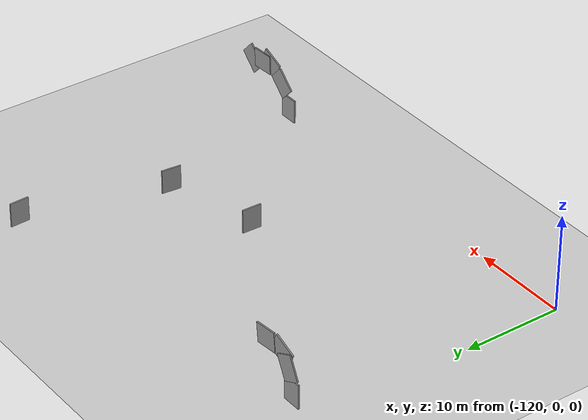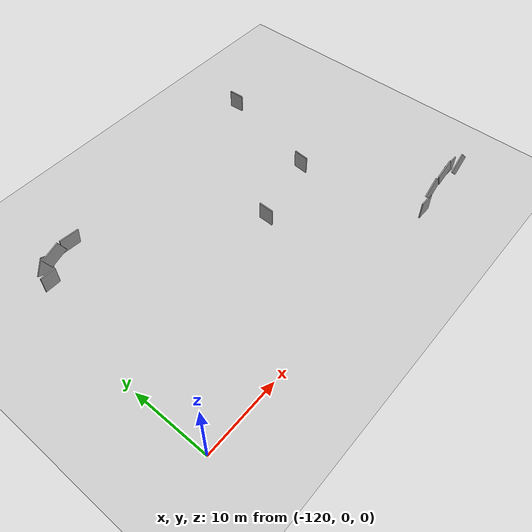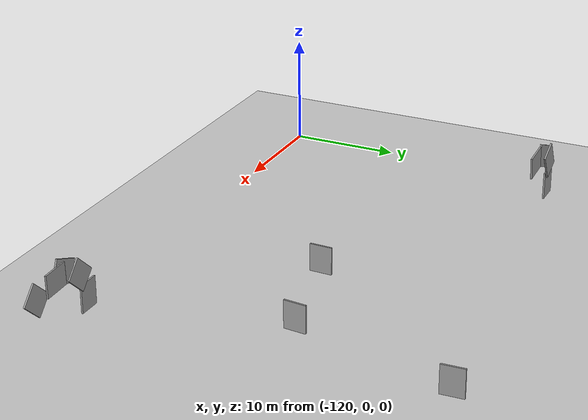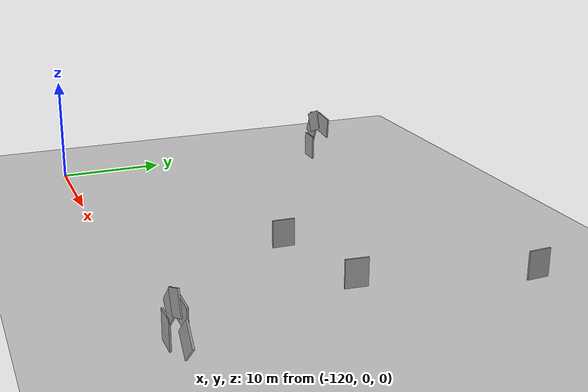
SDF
<sdf version="1.6">
 <world name="default">
  <model name="ground_plane">
   <static>1</static>
   <link name="link">
    <collision name="collision">
     <geometry><plane><normal>0 0 1</normal><size>100 100</size></plane></geometry>
     <surface><friction><ode><mu>100</mu><mu2>50</mu2></ode></friction></surface>
    </collision>
    <visual name="visual">
     <cast_shadows>0</cast_shadows>
     <geometry><plane><normal>0 0 1</normal><size>100 100</size></plane></geometry>
     <material>
      <script><uri>file://media/materials/scripts/gazebo.material</uri><name>Gazebo/Grey</name></script>
     </material>
    </visual>
   </link>
  </model>
  <model name="2mWall_11">
   <pose>-80.5459 0.435841 0 0 -0 0</pose>
   <link name="Wall_0">
    <collision name="Wall_0_Collision">
     <geometry><box><size>2 0.15 2.5</size></box></geometry>
     <pose>0 0 1.25 0 -0 0</pose>
    </collision>
    <visual name="Wall_0_Visual">
     <pose>0 0 1.25 0 -0 0</pose>
     <geometry><box><size>2 0.15 2.5</size></box></geometry>
     <material>
      <script><uri>file://media/materials/scripts/gazebo.material</uri><name>Gazebo/Grey</name></script>
      <ambient>1 1 1 1</ambient>
     </material>
     <meta><layer>0</layer></meta>
    </visual>
   </link>
   <static>1</static>
  </model>
  <model name="2mWall_11_clone_0">
   <pose>-80.3991 0.506506 2.684 0 0.816528 0</pose>
   <link name="Wall_0">
    <collision name="Wall_0_Collision">
     <geometry><box><size>2 0.15 2.5</size></box></geometry>
     <pose>0 0 1.25 0 -0 0</pose>
    </collision>
    <visual name="Wall_0_Visual">
     <pose>0 0 1.25 0 -0 0</pose>
     <geometry><box><size>2 0.15 2.5</size></box></geometry>
     <material>
      <script><uri>file://media/materials/scripts/gazebo.material</uri><name>Gazebo/Grey</name></script>
      <ambient>1 1 1 1</ambient>
     </material>
     <meta><layer>0</layer></meta>
    </visual>
   </link>
   <static>1</static>
  </model>
  <model name="2mWall_11_clone_0_clone">
   <pose>-75.059 0.119832 2.90318 0 0.816528 0</pose>
   <link name="Wall_0">
    <collision name="Wall_0_Collision">
     <geometry><box><size>2 0.15 2.5</size></box></geometry>
     <pose>0 0 1.25 0 -0 0</pose>
    </collision>
    <visual name="Wall_0_Visual">
     <pose>0 0 1.25 0 -0 0</pose>
     <geometry><box><size>2 0.15 2.5</size></box></geometry>
     <material>
      <script><uri>file://media/materials/scripts/gazebo.material</uri><name>Gazebo/Grey</name></script>
      <ambient>1 1 1 1</ambient>
     </material>
     <meta><layer>0</layer></meta>
    </visual>
   </link>
   <static>1</static>
  </model>
  <model name="2mWall_11_clone_0_clone_0">
   <pose>-77.5474 0.489779 4.61692 3.14159 1.52824 3.14159</pose>
   <link name="Wall_0">
    <collision name="Wall_0_Collision">
     <geometry><box><size>2 0.15 2.5</size></box></geometry>
     <pose>0 0 1.25 0 -0 0</pose>
    </collision>
    <visual name="Wall_0_Visual">
     <pose>0 0 1.25 0 -0 0</pose>
     <geometry><box><size>2 0.15 2.5</size></box></geometry>
     <material>
      <script><uri>file://media/materials/scripts/gazebo.material</uri><name>Gazebo/Grey</name></script>
      <ambient>1 1 1 1</ambient>
     </material>
     <meta><layer>0</layer></meta>
    </visual>
   </link>
   <static>1</static>
  </model>
  <model name="2mWall_11_clone_0_clone_0_clone">
   <pose>-78.6518 0.388218 4.2827 0 1.18388 0</pose>
   <link name="Wall_0">
    <collision name="Wall_0_Collision">
     <geometry><box><size>2 0.15 2.5</size></box></geometry>
     <pose>0 0 1.25 0 -0 0</pose>
    </collision>
    <visual name="Wall_0_Visual">
     <pose>0 0 1.25 0 -0 0</pose>
     <geometry><box><size>2 0.15 2.5</size></box></geometry>
     <material>
      <script><uri>file://media/materials/scripts/gazebo.material</uri><name>Gazebo/Grey</name></script>
      <ambient>1 1 1 1</ambient>
     </material>
     <meta><layer>0</layer></meta>
    </visual>
   </link>
   <static>1</static>
  </model>
  <model name="2mWall_12">
   <pose>-117.061 26.7716 0 0 -0 0</pose>
   <link name="Wall_0">
    <collision name="Wall_0_Collision">
     <geometry><box><size>2 0.15 2.5</size></box></geometry>
     <pose>0 0 1.25 0 -0 0</pose>
    </collision>
    <visual name="Wall_0_Visual">
     <pose>0 0 1.25 0 -0 0</pose>
     <geometry><box><size>2 0.15 2.5</size></box></geometry>
     <material>
      <script><uri>file://media/materials/scripts/gazebo.material</uri><name>Gazebo/Grey</name></script>
      <ambient>1 1 1 1</ambient>
     </material>
     <meta><layer>0</layer></meta>
    </visual>
   </link>
   <static>1</static>
  </model>
  <model name="2mWall_12_clone">
   <pose>-117.255 26.9303 2.48061 0 0.459908 0</pose>
   <link name="Wall_0">
    <collision name="Wall_0_Collision">
     <geometry><box><size>2 0.15 2.5</size></box></geometry>
     <pose>0 0 1.25 0 -0 0</pose>
    </collision>
    <visual name="Wall_0_Visual">
     <pose>0 0 1.25 0 -0 0</pose>
     <geometry><box><size>2 0.15 2.5</size></box></geometry>
     <material>
      <script><uri>file://media/materials/scripts/gazebo.material</uri><name>Gazebo/Grey</name></script>
      <ambient>1 1 1 1</ambient>
     </material>
     <meta><layer>0</layer></meta>
    </visual>
   </link>
   <static>1</static>
  </model>
  <model name="2mWall_12_clone_clone">
   <pose>-116.718 26.6567 3.99857 0 1.18222 0</pose>
   <link name="Wall_0">
    <collision name="Wall_0_Collision">
     <geometry><box><size>2 0.15 2.5</size></box></geometry>
     <pose>0 0 1.25 0 -0 0</pose>
    </collision>
    <visual name="Wall_0_Visual">
     <pose>0 0 1.25 0 -0 0</pose>
     <geometry><box><size>2 0.15 2.5</size></box></geometry>
     <material>
      <script><uri>file://media/materials/scripts/gazebo.material</uri><name>Gazebo/Grey</name></script>
      <ambient>1 1 1 1</ambient>
     </material>
     <meta><layer>0</layer></meta>
    </visual>
   </link>
   <static>1</static>
  </model>
  <model name="2mWall_12_clone_clone_clone">
   <pose>-114.552 26.6972 4.77087 3.14159 1.46985 3.14159</pose>
   <link name="Wall_0">
    <collision name="Wall_0_Collision">
     <geometry><box><size>2 0.15 2.5</size></box></geometry>
     <pose>0 0 1.25 0 -0 0</pose>
    </collision>
    <visual name="Wall_0_Visual">
     <pose>0 0 1.25 0 -0 0</pose>
     <geometry><box><size>2 0.15 2.5</size></box></geometry>
     <material>
      <script><uri>file://media/materials/scripts/gazebo.material</uri><name>Gazebo/Grey</name></script>
      <ambient>1 1 1 1</ambient>
     </material>
     <meta><layer>0</layer></meta>
    </visual>
   </link>
   <static>1</static>
  </model>
  <model name="2mWall_17">
   <pose>-84.3059 16.8578 0 0 -0 1.47872</pose>
   <link name="Wall_0">
    <collision name="Wall_0_Collision">
     <geometry><box><size>2 0.15 2.5</size></box></geometry>
     <pose>0 0 1.25 0 -0 0</pose>
    </collision>
    <visual name="Wall_0_Visual">
     <pose>0 0 1.25 0 -0 0</pose>
     <geometry><box><size>2 0.15 2.5</size></box></geometry>
     <material>
      <script><uri>file://media/materials/scripts/gazebo.material</uri><name>Gazebo/Grey</name></script>
      <ambient>1 1 1 1</ambient>
     </material>
     <meta><layer>0</layer></meta>
    </visual>
   </link>
   <static>1</static>
  </model>
  <model name="2mWall_18">
   <pose>-94.0413 14.5273 0 0 0 -1.59625</pose>
   <link name="Wall_0">
    <collision name="Wall_0_Collision">
     <geometry><box><size>2 0.15 2.5</size></box></geometry>
     <pose>0 0 1.25 0 -0 0</pose>
    </collision>
    <visual name="Wall_0_Visual">
     <pose>0 0 1.25 0 -0 0</pose>
     <geometry><box><size>2 0.15 2.5</size></box></geometry>
     <material>
      <script><uri>file://media/materials/scripts/gazebo.material</uri><name>Gazebo/Grey</name></script>
      <ambient>1 1 1 1</ambient>
     </material>
     <meta><layer>0</layer></meta>
    </visual>
   </link>
   <static>1</static>
  </model>
  <model name="2mWall_24">
   <pose>-80.6049 31.2517 0 0 -0 1.617</pose>
   <link name="Wall_0">
    <collision name="Wall_0_Collision">
     <geometry><box><size>2 0.15 2.5</size></box></geometry>
     <pose>0 0 1.25 0 -0 0</pose>
    </collision>
    <visual name="Wall_0_Visual">
     <pose>0 0 1.25 0 -0 0</pose>
     <geometry><box><size>2 0.15 2.5</size></box></geometry>
     <material>
      <script><uri>file://media/materials/scripts/gazebo.material</uri><name>Gazebo/Grey</name></script>
      <ambient>1 1 1 1</ambient>
     </material>
     <meta><layer>0</layer></meta>
    </visual>
   </link>
   <static>1</static>
  </model>
 </world>
</sdf>
